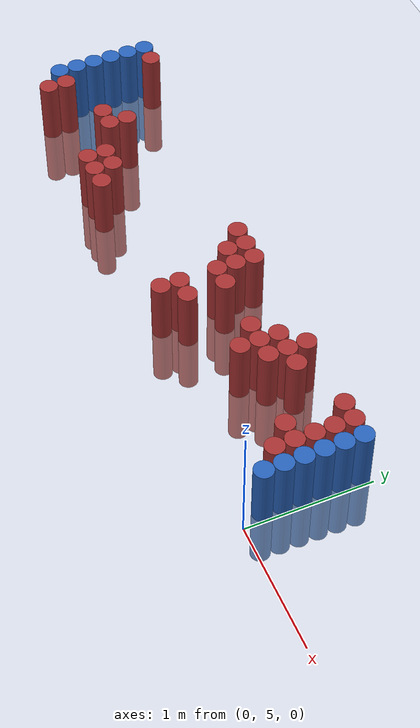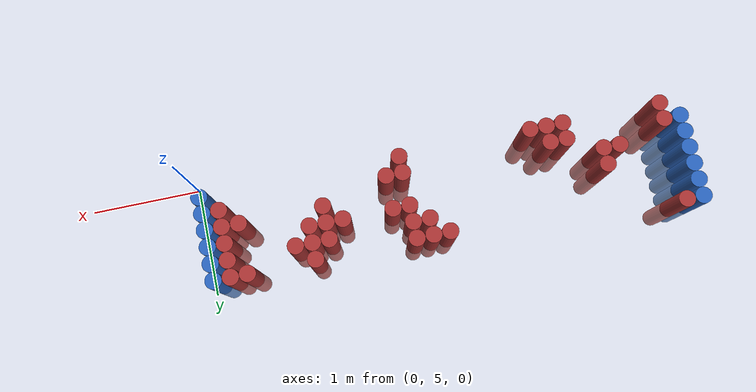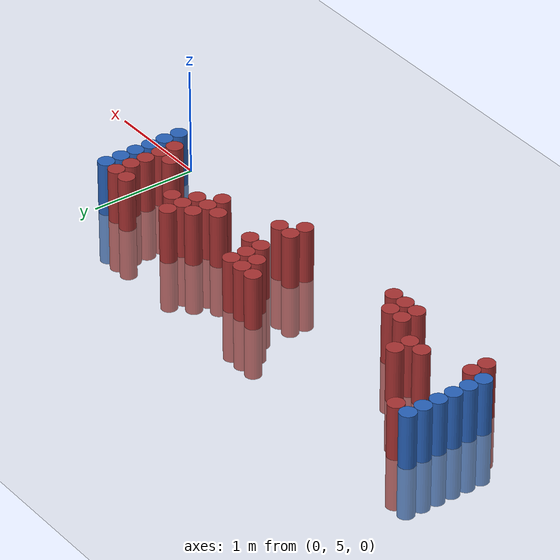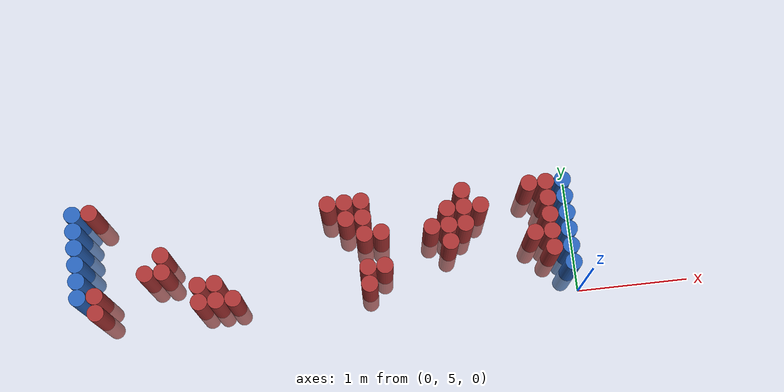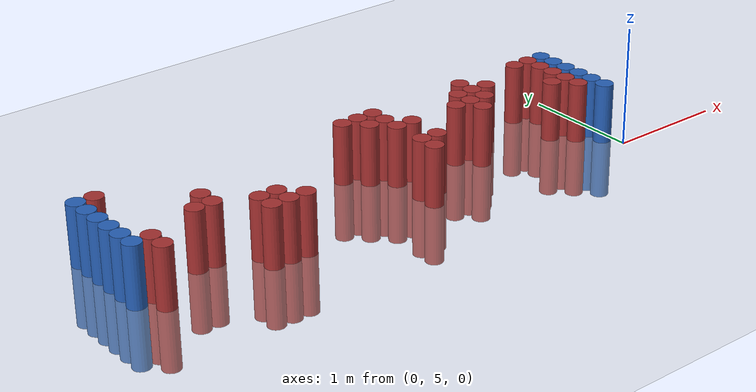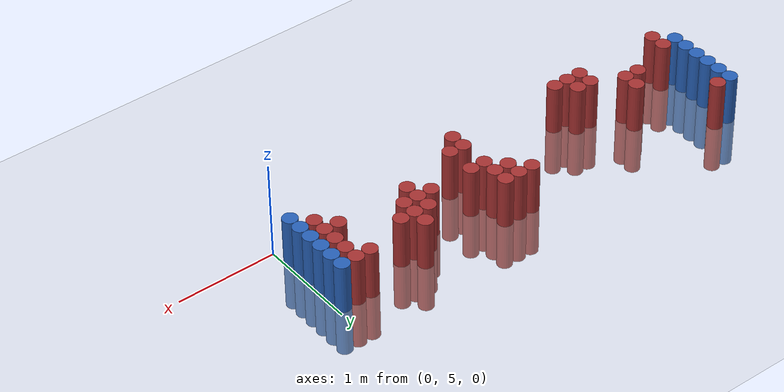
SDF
<sdf version="1.6">
 <world name="default">
  <model name="ground_plane">
   <static>1</static>
   <link name="link">
    <collision name="collision">
     <geometry><plane><normal>0 0 1</normal><size>100 100</size></plane></geometry>
     <surface><friction><ode><mu>100</mu><mu2>50</mu2></ode></friction></surface>
    </collision>
    <visual name="visual">
     <cast_shadows>0</cast_shadows>
     <geometry><plane><normal>0 0 1</normal><size>100 100</size></plane></geometry>
     <material>
      <script><uri>file://media/materials/scripts/gazebo.material</uri><name>Gazebo/Grey</name></script>
     </material>
    </visual>
   </link>
  </model>
  <model name="unit_cylinder_97">
   <static>1</static>
   <pose>-4.425000 5.325000 0.000000 0.000000 0.000000 0.000000</pose>
   <link name="link">
    <inertial>
     <mass>1</mass>
     <inertia><ixx>0.145833</ixx><ixy>0</ixy><ixz>0</ixz><iyy>0.145833</iyy><iyz>0</iyz><izz>0.125</izz></inertia>
    </inertial>
    <collision name="collision">
     <geometry><cylinder><radius>0.075000</radius><length>1</length></cylinder></geometry>
    </collision>
    <visual name="visual">
     <geometry><cylinder><radius>0.075000</radius><length>1</length></cylinder></geometry>
     <material>
      <ambient>0.152000 0.379000 0.720000 1</ambient>
      <diffuse>0.152000 0.379000 0.720000 1</diffuse>
     </material>
     <material>
      <script><name>Gazebo/Grey</name><uri>file://media/materials/scripts/gazebo.material</uri></script>
     </material>
    </visual>
   </link>
  </model>
  <model name="unit_cylinder_98">
   <static>1</static>
   <pose>-4.425000 5.475000 0.000000 0.000000 0.000000 0.000000</pose>
   <link name="link">
    <inertial>
     <mass>1</mass>
     <inertia><ixx>0.145833</ixx><ixy>0</ixy><ixz>0</ixz><iyy>0.145833</iyy><iyz>0</iyz><izz>0.125</izz></inertia>
    </inertial>
    <collision name="collision">
     <geometry><cylinder><radius>0.075000</radius><length>1</length></cylinder></geometry>
    </collision>
    <visual name="visual">
     <geometry><cylinder><radius>0.075000</radius><length>1</length></cylinder></geometry>
     <material>
      <ambient>0.152000 0.379000 0.720000 1</ambient>
      <diffuse>0.152000 0.379000 0.720000 1</diffuse>
     </material>
     <material>
      <script><name>Gazebo/Grey</name><uri>file://media/materials/scripts/gazebo.material</uri></script>
     </material>
    </visual>
   </link>
  </model>
  <model name="unit_cylinder_99">
   <static>1</static>
   <pose>-4.425000 5.625000 0.000000 0.000000 0.000000 0.000000</pose>
   <link name="link">
    <inertial>
     <mass>1</mass>
     <inertia><ixx>0.145833</ixx><ixy>0</ixy><ixz>0</ixz><iyy>0.145833</iyy><iyz>0</iyz><izz>0.125</izz></inertia>
    </inertial>
    <collision name="collision">
     <geometry><cylinder><radius>0.075000</radius><length>1</length></cylinder></geometry>
    </collision>
    <visual name="visual">
     <geometry><cylinder><radius>0.075000</radius><length>1</length></cylinder></geometry>
     <material>
      <ambient>0.152000 0.379000 0.720000 1</ambient>
      <diffuse>0.152000 0.379000 0.720000 1</diffuse>
     </material>
     <material>
      <script><name>Gazebo/Grey</name><uri>file://media/materials/scripts/gazebo.material</uri></script>
     </material>
    </visual>
   </link>
  </model>
  <model name="unit_cylinder_100">
   <static>1</static>
   <pose>-4.425000 5.775000 0.000000 0.000000 0.000000 0.000000</pose>
   <link name="link">
    <inertial>
     <mass>1</mass>
     <inertia><ixx>0.145833</ixx><ixy>0</ixy><ixz>0</ixz><iyy>0.145833</iyy><iyz>0</iyz><izz>0.125</izz></inertia>
    </inertial>
    <collision name="collision">
     <geometry><cylinder><radius>0.075000</radius><length>1</length></cylinder></geometry>
    </collision>
    <visual name="visual">
     <geometry><cylinder><radius>0.075000</radius><length>1</length></cylinder></geometry>
     <material>
      <ambient>0.152000 0.379000 0.720000 1</ambient>
      <diffuse>0.152000 0.379000 0.720000 1</diffuse>
     </material>
     <material>
      <script><name>Gazebo/Grey</name><uri>file://media/materials/scripts/gazebo.material</uri></script>
     </material>
    </visual>
   </link>
  </model>
  <model name="unit_cylinder_101">
   <static>1</static>
   <pose>-4.425000 5.925000 0.000000 0.000000 0.000000 0.000000</pose>
   <link name="link">
    <inertial>
     <mass>1</mass>
     <inertia><ixx>0.145833</ixx><ixy>0</ixy><ixz>0</ixz><iyy>0.145833</iyy><iyz>0</iyz><izz>0.125</izz></inertia>
    </inertial>
    <collision name="collision">
     <geometry><cylinder><radius>0.075000</radius><length>1</length></cylinder></geometry>
    </collision>
    <visual name="visual">
     <geometry><cylinder><radius>0.075000</radius><length>1</length></cylinder></geometry>
     <material>
      <ambient>0.152000 0.379000 0.720000 1</ambient>
      <diffuse>0.152000 0.379000 0.720000 1</diffuse>
     </material>
     <material>
      <script><name>Gazebo/Grey</name><uri>file://media/materials/scripts/gazebo.material</uri></script>
     </material>
    </visual>
   </link>
  </model>
  <model name="unit_cylinder_102">
   <static>1</static>
   <pose>-4.425000 6.075000 0.000000 0.000000 0.000000 0.000000</pose>
   <link name="link">
    <inertial>
     <mass>1</mass>
     <inertia><ixx>0.145833</ixx><ixy>0</ixy><ixz>0</ixz><iyy>0.145833</iyy><iyz>0</iyz><izz>0.125</izz></inertia>
    </inertial>
    <collision name="collision">
     <geometry><cylinder><radius>0.075000</radius><length>1</length></cylinder></geometry>
    </collision>
    <visual name="visual">
     <geometry><cylinder><radius>0.075000</radius><length>1</length></cylinder></geometry>
     <material>
      <ambient>0.152000 0.379000 0.720000 1</ambient>
      <diffuse>0.152000 0.379000 0.720000 1</diffuse>
     </material>
     <material>
      <script><name>Gazebo/Grey</name><uri>file://media/materials/scripts/gazebo.material</uri></script>
     </material>
    </visual>
   </link>
  </model>
  <model name="unit_cylinder_126">
   <static>1</static>
   <pose>-4.275000 5.175000 0.000000 0.000000 0.000000 0.000000</pose>
   <link name="link">
    <inertial>
     <mass>1</mass>
     <inertia><ixx>0.145833</ixx><ixy>0</ixy><ixz>0</ixz><iyy>0.145833</iyy><iyz>0</iyz><izz>0.125</izz></inertia>
    </inertial>
    <collision name="collision">
     <geometry><cylinder><radius>0.075000</radius><length>1</length></cylinder></geometry>
    </collision>
    <visual name="visual">
     <geometry><cylinder><radius>0.075000</radius><length>1</length></cylinder></geometry>
     <material>
      <ambient>0.648000 0.192000 0.192000 1</ambient>
      <diffuse>0.648000 0.192000 0.192000 1</diffuse>
     </material>
     <material>
      <script><name>Gazebo/Grey</name><uri>file://media/materials/scripts/gazebo.material</uri></script>
     </material>
    </visual>
   </link>
  </model>
  <model name="unit_cylinder_127">
   <static>1</static>
   <pose>-4.275000 5.325000 0.000000 0.000000 0.000000 0.000000</pose>
   <link name="link">
    <inertial>
     <mass>1</mass>
     <inertia><ixx>0.145833</ixx><ixy>0</ixy><ixz>0</ixz><iyy>0.145833</iyy><iyz>0</iyz><izz>0.125</izz></inertia>
    </inertial>
    <collision name="collision">
     <geometry><cylinder><radius>0.075000</radius><length>1</length></cylinder></geometry>
    </collision>
    <visual name="visual">
     <geometry><cylinder><radius>0.075000</radius><length>1</length></cylinder></geometry>
     <material>
      <ambient>0.648000 0.192000 0.192000 1</ambient>
      <diffuse>0.648000 0.192000 0.192000 1</diffuse>
     </material>
     <material>
      <script><name>Gazebo/Grey</name><uri>file://media/materials/scripts/gazebo.material</uri></script>
     </material>
    </visual>
   </link>
  </model>
  <model name="unit_cylinder_128">
   <static>1</static>
   <pose>-4.275000 6.075000 0.000000 0.000000 0.000000 0.000000</pose>
   <link name="link">
    <inertial>
     <mass>1</mass>
     <inertia><ixx>0.145833</ixx><ixy>0</ixy><ixz>0</ixz><iyy>0.145833</iyy><iyz>0</iyz><izz>0.125</izz></inertia>
    </inertial>
    <collision name="collision">
     <geometry><cylinder><radius>0.075000</radius><length>1</length></cylinder></geometry>
    </collision>
    <visual name="visual">
     <geometry><cylinder><radius>0.075000</radius><length>1</length></cylinder></geometry>
     <material>
      <ambient>0.648000 0.192000 0.192000 1</ambient>
      <diffuse>0.648000 0.192000 0.192000 1</diffuse>
     </material>
     <material>
      <script><name>Gazebo/Grey</name><uri>file://media/materials/scripts/gazebo.material</uri></script>
     </material>
    </visual>
   </link>
  </model>
  <model name="unit_cylinder_148">
   <static>1</static>
   <pose>-3.825000 5.475000 0.000000 0.000000 0.000000 0.000000</pose>
   <link name="link">
    <inertial>
     <mass>1</mass>
     <inertia><ixx>0.145833</ixx><ixy>0</ixy><ixz>0</ixz><iyy>0.145833</iyy><iyz>0</iyz><izz>0.125</izz></inertia>
    </inertial>
    <collision name="collision">
     <geometry><cylinder><radius>0.075000</radius><length>1</length></cylinder></geometry>
    </collision>
    <visual name="visual">
     <geometry><cylinder><radius>0.075000</radius><length>1</length></cylinder></geometry>
     <material>
      <ambient>0.648000 0.192000 0.192000 1</ambient>
      <diffuse>0.648000 0.192000 0.192000 1</diffuse>
     </material>
     <material>
      <script><name>Gazebo/Grey</name><uri>file://media/materials/scripts/gazebo.material</uri></script>
     </material>
    </visual>
   </link>
  </model>
  <model name="unit_cylinder_154">
   <static>1</static>
   <pose>-3.675000 5.475000 0.000000 0.000000 0.000000 0.000000</pose>
   <link name="link">
    <inertial>
     <mass>1</mass>
     <inertia><ixx>0.145833</ixx><ixy>0</ixy><ixz>0</ixz><iyy>0.145833</iyy><iyz>0</iyz><izz>0.125</izz></inertia>
    </inertial>
    <collision name="collision">
     <geometry><cylinder><radius>0.075000</radius><length>1</length></cylinder></geometry>
    </collision>
    <visual name="visual">
     <geometry><cylinder><radius>0.075000</radius><length>1</length></cylinder></geometry>
     <material>
      <ambient>0.648000 0.192000 0.192000 1</ambient>
      <diffuse>0.648000 0.192000 0.192000 1</diffuse>
     </material>
     <material>
      <script><name>Gazebo/Grey</name><uri>file://media/materials/scripts/gazebo.material</uri></script>
     </material>
    </visual>
   </link>
  </model>
  <model name="unit_cylinder_155">
   <static>1</static>
   <pose>-3.675000 5.625000 0.000000 0.000000 0.000000 0.000000</pose>
   <link name="link">
    <inertial>
     <mass>1</mass>
     <inertia><ixx>0.145833</ixx><ixy>0</ixy><ixz>0</ixz><iyy>0.145833</iyy><iyz>0</iyz><izz>0.125</izz></inertia>
    </inertial>
    <collision name="collision">
     <geometry><cylinder><radius>0.075000</radius><length>1</length></cylinder></geometry>
    </collision>
    <visual name="visual">
     <geometry><cylinder><radius>0.075000</radius><length>1</length></cylinder></geometry>
     <material>
      <ambient>0.648000 0.192000 0.192000 1</ambient>
      <diffuse>0.648000 0.192000 0.192000 1</diffuse>
     </material>
     <material>
      <script><name>Gazebo/Grey</name><uri>file://media/materials/scripts/gazebo.material</uri></script>
     </material>
    </visual>
   </link>
  </model>
  <model name="unit_cylinder_165">
   <static>1</static>
   <pose>-3.375000 5.175000 0.000000 0.000000 0.000000 0.000000</pose>
   <link name="link">
    <inertial>
     <mass>1</mass>
     <inertia><ixx>0.145833</ixx><ixy>0</ixy><ixz>0</ixz><iyy>0.145833</iyy><iyz>0</iyz><izz>0.125</izz></inertia>
    </inertial>
    <collision name="collision">
     <geometry><cylinder><radius>0.075000</radius><length>1</length></cylinder></geometry>
    </collision>
    <visual name="visual">
     <geometry><cylinder><radius>0.075000</radius><length>1</length></cylinder></geometry>
     <material>
      <ambient>0.648000 0.192000 0.192000 1</ambient>
      <diffuse>0.648000 0.192000 0.192000 1</diffuse>
     </material>
     <material>
      <script><name>Gazebo/Grey</name><uri>file://media/materials/scripts/gazebo.material</uri></script>
     </material>
    </visual>
   </link>
  </model>
  <model name="unit_cylinder_166">
   <static>1</static>
   <pose>-3.375000 5.325000 0.000000 0.000000 0.000000 0.000000</pose>
   <link name="link">
    <inertial>
     <mass>1</mass>
     <inertia><ixx>0.145833</ixx><ixy>0</ixy><ixz>0</ixz><iyy>0.145833</iyy><iyz>0</iyz><izz>0.125</izz></inertia>
    </inertial>
    <collision name="collision">
     <geometry><cylinder><radius>0.075000</radius><length>1</length></cylinder></geometry>
    </collision>
    <visual name="visual">
     <geometry><cylinder><radius>0.075000</radius><length>1</length></cylinder></geometry>
     <material>
      <ambient>0.648000 0.192000 0.192000 1</ambient>
      <diffuse>0.648000 0.192000 0.192000 1</diffuse>
     </material>
     <material>
      <script><name>Gazebo/Grey</name><uri>file://media/materials/scripts/gazebo.material</uri></script>
     </material>
    </visual>
   </link>
  </model>
  <model name="unit_cylinder_172">
   <static>1</static>
   <pose>-3.225000 5.175000 0.000000 0.000000 0.000000 0.000000</pose>
   <link name="link">
    <inertial>
     <mass>1</mass>
     <inertia><ixx>0.145833</ixx><ixy>0</ixy><ixz>0</ixz><iyy>0.145833</iyy><iyz>0</iyz><izz>0.125</izz></inertia>
    </inertial>
    <collision name="collision">
     <geometry><cylinder><radius>0.075000</radius><length>1</length></cylinder></geometry>
    </collision>
    <visual name="visual">
     <geometry><cylinder><radius>0.075000</radius><length>1</length></cylinder></geometry>
     <material>
      <ambient>0.648000 0.192000 0.192000 1</ambient>
      <diffuse>0.648000 0.192000 0.192000 1</diffuse>
     </material>
     <material>
      <script><name>Gazebo/Grey</name><uri>file://media/materials/scripts/gazebo.material</uri></script>
     </material>
    </visual>
   </link>
  </model>
  <model name="unit_cylinder_173">
   <static>1</static>
   <pose>-3.225000 5.325000 0.000000 0.000000 0.000000 0.000000</pose>
   <link name="link">
    <inertial>
     <mass>1</mass>
     <inertia><ixx>0.145833</ixx><ixy>0</ixy><ixz>0</ixz><iyy>0.145833</iyy><iyz>0</iyz><izz>0.125</izz></inertia>
    </inertial>
    <collision name="collision">
     <geometry><cylinder><radius>0.075000</radius><length>1</length></cylinder></geometry>
    </collision>
    <visual name="visual">
     <geometry><cylinder><radius>0.075000</radius><length>1</length></cylinder></geometry>
     <material>
      <ambient>0.648000 0.192000 0.192000 1</ambient>
      <diffuse>0.648000 0.192000 0.192000 1</diffuse>
     </material>
     <material>
      <script><name>Gazebo/Grey</name><uri>file://media/materials/scripts/gazebo.material</uri></script>
     </material>
    </visual>
   </link>
  </model>
  <model name="unit_cylinder_183">
   <static>1</static>
   <pose>-3.075000 5.175000 0.000000 0.000000 0.000000 0.000000</pose>
   <link name="link">
    <inertial>
     <mass>1</mass>
     <inertia><ixx>0.145833</ixx><ixy>0</ixy><ixz>0</ixz><iyy>0.145833</iyy><iyz>0</iyz><izz>0.125</izz></inertia>
    </inertial>
    <collision name="collision">
     <geometry><cylinder><radius>0.075000</radius><length>1</length></cylinder></geometry>
    </collision>
    <visual name="visual">
     <geometry><cylinder><radius>0.075000</radius><length>1</length></cylinder></geometry>
     <material>
      <ambient>0.648000 0.192000 0.192000 1</ambient>
      <diffuse>0.648000 0.192000 0.192000 1</diffuse>
     </material>
     <material>
      <script><name>Gazebo/Grey</name><uri>file://media/materials/scripts/gazebo.material</uri></script>
     </material>
    </visual>
   </link>
  </model>
  <model name="unit_cylinder_207">
   <static>1</static>
   <pose>-2.175000 5.925000 0.000000 0.000000 0.000000 0.000000</pose>
   <link name="link">
    <inertial>
     <mass>1</mass>
     <inertia><ixx>0.145833</ixx><ixy>0</ixy><ixz>0</ixz><iyy>0.145833</iyy><iyz>0</iyz><izz>0.125</izz></inertia>
    </inertial>
    <collision name="collision">
     <geometry><cylinder><radius>0.075000</radius><length>1</length></cylinder></geometry>
    </collision>
    <visual name="visual">
     <geometry><cylinder><radius>0.075000</radius><length>1</length></cylinder></geometry>
     <material>
      <ambient>0.648000 0.192000 0.192000 1</ambient>
      <diffuse>0.648000 0.192000 0.192000 1</diffuse>
     </material>
     <material>
      <script><name>Gazebo/Grey</name><uri>file://media/materials/scripts/gazebo.material</uri></script>
     </material>
    </visual>
   </link>
  </model>
  <model name="unit_cylinder_209">
   <static>1</static>
   <pose>-2.025000 5.775000 0.000000 0.000000 0.000000 0.000000</pose>
   <link name="link">
    <inertial>
     <mass>1</mass>
     <inertia><ixx>0.145833</ixx><ixy>0</ixy><ixz>0</ixz><iyy>0.145833</iyy><iyz>0</iyz><izz>0.125</izz></inertia>
    </inertial>
    <collision name="collision">
     <geometry><cylinder><radius>0.075000</radius><length>1</length></cylinder></geometry>
    </collision>
    <visual name="visual">
     <geometry><cylinder><radius>0.075000</radius><length>1</length></cylinder></geometry>
     <material>
      <ambient>0.648000 0.192000 0.192000 1</ambient>
      <diffuse>0.648000 0.192000 0.192000 1</diffuse>
     </material>
     <material>
      <script><name>Gazebo/Grey</name><uri>file://media/materials/scripts/gazebo.material</uri></script>
     </material>
    </visual>
   </link>
  </model>
  <model name="unit_cylinder_210">
   <static>1</static>
   <pose>-2.025000 5.925000 0.000000 0.000000 0.000000 0.000000</pose>
   <link name="link">
    <inertial>
     <mass>1</mass>
     <inertia><ixx>0.145833</ixx><ixy>0</ixy><ixz>0</ixz><iyy>0.145833</iyy><iyz>0</iyz><izz>0.125</izz></inertia>
    </inertial>
    <collision name="collision">
     <geometry><cylinder><radius>0.075000</radius><length>1</length></cylinder></geometry>
    </collision>
    <visual name="visual">
     <geometry><cylinder><radius>0.075000</radius><length>1</length></cylinder></geometry>
     <material>
      <ambient>0.648000 0.192000 0.192000 1</ambient>
      <diffuse>0.648000 0.192000 0.192000 1</diffuse>
     </material>
     <material>
      <script><name>Gazebo/Grey</name><uri>file://media/materials/scripts/gazebo.material</uri></script>
     </material>
    </visual>
   </link>
  </model>
  <model name="unit_cylinder_213">
   <static>1</static>
   <pose>-1.875000 5.175000 0.000000 0.000000 0.000000 0.000000</pose>
   <link name="link">
    <inertial>
     <mass>1</mass>
     <inertia><ixx>0.145833</ixx><ixy>0</ixy><ixz>0</ixz><iyy>0.145833</iyy><iyz>0</iyz><izz>0.125</izz></inertia>
    </inertial>
    <collision name="collision">
     <geometry><cylinder><radius>0.075000</radius><length>1</length></cylinder></geometry>
    </collision>
    <visual name="visual">
     <geometry><cylinder><radius>0.075000</radius><length>1</length></cylinder></geometry>
     <material>
      <ambient>0.648000 0.192000 0.192000 1</ambient>
      <diffuse>0.648000 0.192000 0.192000 1</diffuse>
     </material>
     <material>
      <script><name>Gazebo/Grey</name><uri>file://media/materials/scripts/gazebo.material</uri></script>
     </material>
    </visual>
   </link>
  </model>
  <model name="unit_cylinder_214">
   <static>1</static>
   <pose>-1.875000 5.325000 0.000000 0.000000 0.000000 0.000000</pose>
   <link name="link">
    <inertial>
     <mass>1</mass>
     <inertia><ixx>0.145833</ixx><ixy>0</ixy><ixz>0</ixz><iyy>0.145833</iyy><iyz>0</iyz><izz>0.125</izz></inertia>
    </inertial>
    <collision name="collision">
     <geometry><cylinder><radius>0.075000</radius><length>1</length></cylinder></geometry>
    </collision>
    <visual name="visual">
     <geometry><cylinder><radius>0.075000</radius><length>1</length></cylinder></geometry>
     <material>
      <ambient>0.648000 0.192000 0.192000 1</ambient>
      <diffuse>0.648000 0.192000 0.192000 1</diffuse>
     </material>
     <material>
      <script><name>Gazebo/Grey</name><uri>file://media/materials/scripts/gazebo.material</uri></script>
     </material>
    </visual>
   </link>
  </model>
  <model name="unit_cylinder_215">
   <static>1</static>
   <pose>-1.875000 5.625000 0.000000 0.000000 0.000000 0.000000</pose>
   <link name="link">
    <inertial>
     <mass>1</mass>
     <inertia><ixx>0.145833</ixx><ixy>0</ixy><ixz>0</ixz><iyy>0.145833</iyy><iyz>0</iyz><izz>0.125</izz></inertia>
    </inertial>
    <collision name="collision">
     <geometry><cylinder><radius>0.075000</radius><length>1</length></cylinder></geometry>
    </collision>
    <visual name="visual">
     <geometry><cylinder><radius>0.075000</radius><length>1</length></cylinder></geometry>
     <material>
      <ambient>0.648000 0.192000 0.192000 1</ambient>
      <diffuse>0.648000 0.192000 0.192000 1</diffuse>
     </material>
     <material>
      <script><name>Gazebo/Grey</name><uri>file://media/materials/scripts/gazebo.material</uri></script>
     </material>
    </visual>
   </link>
  </model>
  <model name="unit_cylinder_216">
   <static>1</static>
   <pose>-1.875000 5.775000 0.000000 0.000000 0.000000 0.000000</pose>
   <link name="link">
    <inertial>
     <mass>1</mass>
     <inertia><ixx>0.145833</ixx><ixy>0</ixy><ixz>0</ixz><iyy>0.145833</iyy><iyz>0</iyz><izz>0.125</izz></inertia>
    </inertial>
    <collision name="collision">
     <geometry><cylinder><radius>0.075000</radius><length>1</length></cylinder></geometry>
    </collision>
    <visual name="visual">
     <geometry><cylinder><radius>0.075000</radius><length>1</length></cylinder></geometry>
     <material>
      <ambient>0.648000 0.192000 0.192000 1</ambient>
      <diffuse>0.648000 0.192000 0.192000 1</diffuse>
     </material>
     <material>
      <script><name>Gazebo/Grey</name><uri>file://media/materials/scripts/gazebo.material</uri></script>
     </material>
    </visual>
   </link>
  </model>
  <model name="unit_cylinder_217">
   <static>1</static>
   <pose>-1.875000 5.925000 0.000000 0.000000 0.000000 0.000000</pose>
   <link name="link">
    <inertial>
     <mass>1</mass>
     <inertia><ixx>0.145833</ixx><ixy>0</ixy><ixz>0</ixz><iyy>0.145833</iyy><iyz>0</iyz><izz>0.125</izz></inertia>
    </inertial>
    <collision name="collision">
     <geometry><cylinder><radius>0.075000</radius><length>1</length></cylinder></geometry>
    </collision>
    <visual name="visual">
     <geometry><cylinder><radius>0.075000</radius><length>1</length></cylinder></geometry>
     <material>
      <ambient>0.648000 0.192000 0.192000 1</ambient>
      <diffuse>0.648000 0.192000 0.192000 1</diffuse>
     </material>
     <material>
      <script><name>Gazebo/Grey</name><uri>file://media/materials/scripts/gazebo.material</uri></script>
     </material>
    </visual>
   </link>
  </model>
  <model name="unit_cylinder_222">
   <static>1</static>
   <pose>-1.725000 5.325000 0.000000 0.000000 0.000000 0.000000</pose>
   <link name="link">
    <inertial>
     <mass>1</mass>
     <inertia><ixx>0.145833</ixx><ixy>0</ixy><ixz>0</ixz><iyy>0.145833</iyy><iyz>0</iyz><izz>0.125</izz></inertia>
    </inertial>
    <collision name="collision">
     <geometry><cylinder><radius>0.075000</radius><length>1</length></cylinder></geometry>
    </collision>
    <visual name="visual">
     <geometry><cylinder><radius>0.075000</radius><length>1</length></cylinder></geometry>
     <material>
      <ambient>0.648000 0.192000 0.192000 1</ambient>
      <diffuse>0.648000 0.192000 0.192000 1</diffuse>
     </material>
     <material>
      <script><name>Gazebo/Grey</name><uri>file://media/materials/scripts/gazebo.material</uri></script>
     </material>
    </visual>
   </link>
  </model>
  <model name="unit_cylinder_223">
   <static>1</static>
   <pose>-1.725000 5.625000 0.000000 0.000000 0.000000 0.000000</pose>
   <link name="link">
    <inertial>
     <mass>1</mass>
     <inertia><ixx>0.145833</ixx><ixy>0</ixy><ixz>0</ixz><iyy>0.145833</iyy><iyz>0</iyz><izz>0.125</izz></inertia>
    </inertial>
    <collision name="collision">
     <geometry><cylinder><radius>0.075000</radius><length>1</length></cylinder></geometry>
    </collision>
    <visual name="visual">
     <geometry><cylinder><radius>0.075000</radius><length>1</length></cylinder></geometry>
     <material>
      <ambient>0.648000 0.192000 0.192000 1</ambient>
      <diffuse>0.648000 0.192000 0.192000 1</diffuse>
     </material>
     <material>
      <script><name>Gazebo/Grey</name><uri>file://media/materials/scripts/gazebo.material</uri></script>
     </material>
    </visual>
   </link>
  </model>
  <model name="unit_cylinder_238">
   <static>1</static>
   <pose>-1.275000 5.625000 0.000000 0.000000 0.000000 0.000000</pose>
   <link name="link">
    <inertial>
     <mass>1</mass>
     <inertia><ixx>0.145833</ixx><ixy>0</ixy><ixz>0</ixz><iyy>0.145833</iyy><iyz>0</iyz><izz>0.125</izz></inertia>
    </inertial>
    <collision name="collision">
     <geometry><cylinder><radius>0.075000</radius><length>1</length></cylinder></geometry>
    </collision>
    <visual name="visual">
     <geometry><cylinder><radius>0.075000</radius><length>1</length></cylinder></geometry>
     <material>
      <ambient>0.648000 0.192000 0.192000 1</ambient>
      <diffuse>0.648000 0.192000 0.192000 1</diffuse>
     </material>
     <material>
      <script><name>Gazebo/Grey</name><uri>file://media/materials/scripts/gazebo.material</uri></script>
     </material>
    </visual>
   </link>
  </model>
  <model name="unit_cylinder_243">
   <static>1</static>
   <pose>-1.125000 5.475000 0.000000 0.000000 0.000000 0.000000</pose>
   <link name="link">
    <inertial>
     <mass>1</mass>
     <inertia><ixx>0.145833</ixx><ixy>0</ixy><ixz>0</ixz><iyy>0.145833</iyy><iyz>0</iyz><izz>0.125</izz></inertia>
    </inertial>
    <collision name="collision">
     <geometry><cylinder><radius>0.075000</radius><length>1</length></cylinder></geometry>
    </collision>
    <visual name="visual">
     <geometry><cylinder><radius>0.075000</radius><length>1</length></cylinder></geometry>
     <material>
      <ambient>0.648000 0.192000 0.192000 1</ambient>
      <diffuse>0.648000 0.192000 0.192000 1</diffuse>
     </material>
     <material>
      <script><name>Gazebo/Grey</name><uri>file://media/materials/scripts/gazebo.material</uri></script>
     </material>
    </visual>
   </link>
  </model>
  <model name="unit_cylinder_244">
   <static>1</static>
   <pose>-1.125000 5.625000 0.000000 0.000000 0.000000 0.000000</pose>
   <link name="link">
    <inertial>
     <mass>1</mass>
     <inertia><ixx>0.145833</ixx><ixy>0</ixy><ixz>0</ixz><iyy>0.145833</iyy><iyz>0</iyz><izz>0.125</izz></inertia>
    </inertial>
    <collision name="collision">
     <geometry><cylinder><radius>0.075000</radius><length>1</length></cylinder></geometry>
    </collision>
    <visual name="visual">
     <geometry><cylinder><radius>0.075000</radius><length>1</length></cylinder></geometry>
     <material>
      <ambient>0.648000 0.192000 0.192000 1</ambient>
      <diffuse>0.648000 0.192000 0.192000 1</diffuse>
     </material>
     <material>
      <script><name>Gazebo/Grey</name><uri>file://media/materials/scripts/gazebo.material</uri></script>
     </material>
    </visual>
   </link>
  </model>
  <model name="unit_cylinder_245">
   <static>1</static>
   <pose>-1.125000 5.775000 0.000000 0.000000 0.000000 0.000000</pose>
   <link name="link">
    <inertial>
     <mass>1</mass>
     <inertia><ixx>0.145833</ixx><ixy>0</ixy><ixz>0</ixz><iyy>0.145833</iyy><iyz>0</iyz><izz>0.125</izz></inertia>
    </inertial>
    <collision name="collision">
     <geometry><cylinder><radius>0.075000</radius><length>1</length></cylinder></geometry>
    </collision>
    <visual name="visual">
     <geometry><cylinder><radius>0.075000</radius><length>1</length></cylinder></geometry>
     <material>
      <ambient>0.648000 0.192000 0.192000 1</ambient>
      <diffuse>0.648000 0.192000 0.192000 1</diffuse>
     </material>
     <material>
      <script><name>Gazebo/Grey</name><uri>file://media/materials/scripts/gazebo.material</uri></script>
     </material>
    </visual>
   </link>
  </model>
  <model name="unit_cylinder_257">
   <static>1</static>
   <pose>-0.975000 5.625000 0.000000 0.000000 0.000000 0.000000</pose>
   <link name="link">
    <inertial>
     <mass>1</mass>
     <inertia><ixx>0.145833</ixx><ixy>0</ixy><ixz>0</ixz><iyy>0.145833</iyy><iyz>0</iyz><izz>0.125</izz></inertia>
    </inertial>
    <collision name="collision">
     <geometry><cylinder><radius>0.075000</radius><length>1</length></cylinder></geometry>
    </collision>
    <visual name="visual">
     <geometry><cylinder><radius>0.075000</radius><length>1</length></cylinder></geometry>
     <material>
      <ambient>0.648000 0.192000 0.192000 1</ambient>
      <diffuse>0.648000 0.192000 0.192000 1</diffuse>
     </material>
     <material>
      <script><name>Gazebo/Grey</name><uri>file://media/materials/scripts/gazebo.material</uri></script>
     </material>
    </visual>
   </link>
  </model>
  <model name="unit_cylinder_258">
   <static>1</static>
   <pose>-0.975000 5.775000 0.000000 0.000000 0.000000 0.000000</pose>
   <link name="link">
    <inertial>
     <mass>1</mass>
     <inertia><ixx>0.145833</ixx><ixy>0</ixy><ixz>0</ixz><iyy>0.145833</iyy><iyz>0</iyz><izz>0.125</izz></inertia>
    </inertial>
    <collision name="collision">
     <geometry><cylinder><radius>0.075000</radius><length>1</length></cylinder></geometry>
    </collision>
    <visual name="visual">
     <geometry><cylinder><radius>0.075000</radius><length>1</length></cylinder></geometry>
     <material>
      <ambient>0.648000 0.192000 0.192000 1</ambient>
      <diffuse>0.648000 0.192000 0.192000 1</diffuse>
     </material>
     <material>
      <script><name>Gazebo/Grey</name><uri>file://media/materials/scripts/gazebo.material</uri></script>
     </material>
    </visual>
   </link>
  </model>
  <model name="unit_cylinder_259">
   <static>1</static>
   <pose>-0.975000 5.925000 0.000000 0.000000 0.000000 0.000000</pose>
   <link name="link">
    <inertial>
     <mass>1</mass>
     <inertia><ixx>0.145833</ixx><ixy>0</ixy><ixz>0</ixz><iyy>0.145833</iyy><iyz>0</iyz><izz>0.125</izz></inertia>
    </inertial>
    <collision name="collision">
     <geometry><cylinder><radius>0.075000</radius><length>1</length></cylinder></geometry>
    </collision>
    <visual name="visual">
     <geometry><cylinder><radius>0.075000</radius><length>1</length></cylinder></geometry>
     <material>
      <ambient>0.648000 0.192000 0.192000 1</ambient>
      <diffuse>0.648000 0.192000 0.192000 1</diffuse>
     </material>
     <material>
      <script><name>Gazebo/Grey</name><uri>file://media/materials/scripts/gazebo.material</uri></script>
     </material>
    </visual>
   </link>
  </model>
  <model name="unit_cylinder_269">
   <static>1</static>
   <pose>-0.825000 5.775000 0.000000 0.000000 0.000000 0.000000</pose>
   <link name="link">
    <inertial>
     <mass>1</mass>
     <inertia><ixx>0.145833</ixx><ixy>0</ixy><ixz>0</ixz><iyy>0.145833</iyy><iyz>0</iyz><izz>0.125</izz></inertia>
    </inertial>
    <collision name="collision">
     <geometry><cylinder><radius>0.075000</radius><length>1</length></cylinder></geometry>
    </collision>
    <visual name="visual">
     <geometry><cylinder><radius>0.075000</radius><length>1</length></cylinder></geometry>
     <material>
      <ambient>0.648000 0.192000 0.192000 1</ambient>
      <diffuse>0.648000 0.192000 0.192000 1</diffuse>
     </material>
     <material>
      <script><name>Gazebo/Grey</name><uri>file://media/materials/scripts/gazebo.material</uri></script>
     </material>
    </visual>
   </link>
  </model>
  <model name="unit_cylinder_286">
   <static>1</static>
   <pose>-0.375000 5.475000 0.000000 0.000000 0.000000 0.000000</pose>
   <link name="link">
    <inertial>
     <mass>1</mass>
     <inertia><ixx>0.145833</ixx><ixy>0</ixy><ixz>0</ixz><iyy>0.145833</iyy><iyz>0</iyz><izz>0.125</izz></inertia>
    </inertial>
    <collision name="collision">
     <geometry><cylinder><radius>0.075000</radius><length>1</length></cylinder></geometry>
    </collision>
    <visual name="visual">
     <geometry><cylinder><radius>0.075000</radius><length>1</length></cylinder></geometry>
     <material>
      <ambient>0.648000 0.192000 0.192000 1</ambient>
      <diffuse>0.648000 0.192000 0.192000 1</diffuse>
     </material>
     <material>
      <script><name>Gazebo/Grey</name><uri>file://media/materials/scripts/gazebo.material</uri></script>
     </material>
    </visual>
   </link>
  </model>
  <model name="unit_cylinder_287">
   <static>1</static>
   <pose>-0.375000 5.925000 0.000000 0.000000 0.000000 0.000000</pose>
   <link name="link">
    <inertial>
     <mass>1</mass>
     <inertia><ixx>0.145833</ixx><ixy>0</ixy><ixz>0</ixz><iyy>0.145833</iyy><iyz>0</iyz><izz>0.125</izz></inertia>
    </inertial>
    <collision name="collision">
     <geometry><cylinder><radius>0.075000</radius><length>1</length></cylinder></geometry>
    </collision>
    <visual name="visual">
     <geometry><cylinder><radius>0.075000</radius><length>1</length></cylinder></geometry>
     <material>
      <ambient>0.648000 0.192000 0.192000 1</ambient>
      <diffuse>0.648000 0.192000 0.192000 1</diffuse>
     </material>
     <material>
      <script><name>Gazebo/Grey</name><uri>file://media/materials/scripts/gazebo.material</uri></script>
     </material>
    </visual>
   </link>
  </model>
  <model name="unit_cylinder_293">
   <static>1</static>
   <pose>-0.225000 5.325000 0.000000 0.000000 0.000000 0.000000</pose>
   <link name="link">
    <inertial>
     <mass>1</mass>
     <inertia><ixx>0.145833</ixx><ixy>0</ixy><ixz>0</ixz><iyy>0.145833</iyy><iyz>0</iyz><izz>0.125</izz></inertia>
    </inertial>
    <collision name="collision">
     <geometry><cylinder><radius>0.075000</radius><length>1</length></cylinder></geometry>
    </collision>
    <visual name="visual">
     <geometry><cylinder><radius>0.075000</radius><length>1</length></cylinder></geometry>
     <material>
      <ambient>0.648000 0.192000 0.192000 1</ambient>
      <diffuse>0.648000 0.192000 0.192000 1</diffuse>
     </material>
     <material>
      <script><name>Gazebo/Grey</name><uri>file://media/materials/scripts/gazebo.material</uri></script>
     </material>
    </visual>
   </link>
  </model>
  <model name="unit_cylinder_294">
   <static>1</static>
   <pose>-0.225000 5.475000 0.000000 0.000000 0.000000 0.000000</pose>
   <link name="link">
    <inertial>
     <mass>1</mass>
     <inertia><ixx>0.145833</ixx><ixy>0</ixy><ixz>0</ixz><iyy>0.145833</iyy><iyz>0</iyz><izz>0.125</izz></inertia>
    </inertial>
    <collision name="collision">
     <geometry><cylinder><radius>0.075000</radius><length>1</length></cylinder></geometry>
    </collision>
    <visual name="visual">
     <geometry><cylinder><radius>0.075000</radius><length>1</length></cylinder></geometry>
     <material>
      <ambient>0.648000 0.192000 0.192000 1</ambient>
      <diffuse>0.648000 0.192000 0.192000 1</diffuse>
     </material>
     <material>
      <script><name>Gazebo/Grey</name><uri>file://media/materials/scripts/gazebo.material</uri></script>
     </material>
    </visual>
   </link>
  </model>
  <model name="unit_cylinder_295">
   <static>1</static>
   <pose>-0.225000 5.625000 0.000000 0.000000 0.000000 0.000000</pose>
   <link name="link">
    <inertial>
     <mass>1</mass>
     <inertia><ixx>0.145833</ixx><ixy>0</ixy><ixz>0</ixz><iyy>0.145833</iyy><iyz>0</iyz><izz>0.125</izz></inertia>
    </inertial>
    <collision name="collision">
     <geometry><cylinder><radius>0.075000</radius><length>1</length></cylinder></geometry>
    </collision>
    <visual name="visual">
     <geometry><cylinder><radius>0.075000</radius><length>1</length></cylinder></geometry>
     <material>
      <ambient>0.648000 0.192000 0.192000 1</ambient>
      <diffuse>0.648000 0.192000 0.192000 1</diffuse>
     </material>
     <material>
      <script><name>Gazebo/Grey</name><uri>file://media/materials/scripts/gazebo.material</uri></script>
     </material>
    </visual>
   </link>
  </model>
  <model name="unit_cylinder_296">
   <static>1</static>
   <pose>-0.225000 5.775000 0.000000 0.000000 0.000000 0.000000</pose>
   <link name="link">
    <inertial>
     <mass>1</mass>
     <inertia><ixx>0.145833</ixx><ixy>0</ixy><ixz>0</ixz><iyy>0.145833</iyy><iyz>0</iyz><izz>0.125</izz></inertia>
    </inertial>
    <collision name="collision">
     <geometry><cylinder><radius>0.075000</radius><length>1</length></cylinder></geometry>
    </collision>
    <visual name="visual">
     <geometry><cylinder><radius>0.075000</radius><length>1</length></cylinder></geometry>
     <material>
      <ambient>0.648000 0.192000 0.192000 1</ambient>
      <diffuse>0.648000 0.192000 0.192000 1</diffuse>
     </material>
     <material>
      <script><name>Gazebo/Grey</name><uri>file://media/materials/scripts/gazebo.material</uri></script>
     </material>
    </visual>
   </link>
  </model>
  <model name="unit_cylinder_297">
   <static>1</static>
   <pose>-0.225000 5.925000 0.000000 0.000000 0.000000 0.000000</pose>
   <link name="link">
    <inertial>
     <mass>1</mass>
     <inertia><ixx>0.145833</ixx><ixy>0</ixy><ixz>0</ixz><iyy>0.145833</iyy><iyz>0</iyz><izz>0.125</izz></inertia>
    </inertial>
    <collision name="collision">
     <geometry><cylinder><radius>0.075000</radius><length>1</length></cylinder></geometry>
    </collision>
    <visual name="visual">
     <geometry><cylinder><radius>0.075000</radius><length>1</length></cylinder></geometry>
     <material>
      <ambient>0.648000 0.192000 0.192000 1</ambient>
      <diffuse>0.648000 0.192000 0.192000 1</diffuse>
     </material>
     <material>
      <script><name>Gazebo/Grey</name><uri>file://media/materials/scripts/gazebo.material</uri></script>
     </material>
    </visual>
   </link>
  </model>
  <model name="unit_cylinder_308">
   <static>1</static>
   <pose>-0.075000 5.175000 0.000000 0.000000 0.000000 0.000000</pose>
   <link name="link">
    <inertial>
     <mass>1</mass>
     <inertia><ixx>0.145833</ixx><ixy>0</ixy><ixz>0</ixz><iyy>0.145833</iyy><iyz>0</iyz><izz>0.125</izz></inertia>
    </inertial>
    <collision name="collision">
     <geometry><cylinder><radius>0.075000</radius><length>1</length></cylinder></geometry>
    </collision>
    <visual name="visual">
     <geometry><cylinder><radius>0.075000</radius><length>1</length></cylinder></geometry>
     <material>
      <ambient>0.152000 0.379000 0.720000 1</ambient>
      <diffuse>0.152000 0.379000 0.720000 1</diffuse>
     </material>
     <material>
      <script><name>Gazebo/Grey</name><uri>file://media/materials/scripts/gazebo.material</uri></script>
     </material>
    </visual>
   </link>
  </model>
  <model name="unit_cylinder_309">
   <static>1</static>
   <pose>-0.075000 5.325000 0.000000 0.000000 0.000000 0.000000</pose>
   <link name="link">
    <inertial>
     <mass>1</mass>
     <inertia><ixx>0.145833</ixx><ixy>0</ixy><ixz>0</ixz><iyy>0.145833</iyy><iyz>0</iyz><izz>0.125</izz></inertia>
    </inertial>
    <collision name="collision">
     <geometry><cylinder><radius>0.075000</radius><length>1</length></cylinder></geometry>
    </collision>
    <visual name="visual">
     <geometry><cylinder><radius>0.075000</radius><length>1</length></cylinder></geometry>
     <material>
      <ambient>0.152000 0.379000 0.720000 1</ambient>
      <diffuse>0.152000 0.379000 0.720000 1</diffuse>
     </material>
     <material>
      <script><name>Gazebo/Grey</name><uri>file://media/materials/scripts/gazebo.material</uri></script>
     </material>
    </visual>
   </link>
  </model>
  <model name="unit_cylinder_310">
   <static>1</static>
   <pose>-0.075000 5.475000 0.000000 0.000000 0.000000 0.000000</pose>
   <link name="link">
    <inertial>
     <mass>1</mass>
     <inertia><ixx>0.145833</ixx><ixy>0</ixy><ixz>0</ixz><iyy>0.145833</iyy><iyz>0</iyz><izz>0.125</izz></inertia>
    </inertial>
    <collision name="collision">
     <geometry><cylinder><radius>0.075000</radius><length>1</length></cylinder></geometry>
    </collision>
    <visual name="visual">
     <geometry><cylinder><radius>0.075000</radius><length>1</length></cylinder></geometry>
     <material>
      <ambient>0.152000 0.379000 0.720000 1</ambient>
      <diffuse>0.152000 0.379000 0.720000 1</diffuse>
     </material>
     <material>
      <script><name>Gazebo/Grey</name><uri>file://media/materials/scripts/gazebo.material</uri></script>
     </material>
    </visual>
   </link>
  </model>
  <model name="unit_cylinder_311">
   <static>1</static>
   <pose>-0.075000 5.625000 0.000000 0.000000 0.000000 0.000000</pose>
   <link name="link">
    <inertial>
     <mass>1</mass>
     <inertia><ixx>0.145833</ixx><ixy>0</ixy><ixz>0</ixz><iyy>0.145833</iyy><iyz>0</iyz><izz>0.125</izz></inertia>
    </inertial>
    <collision name="collision">
     <geometry><cylinder><radius>0.075000</radius><length>1</length></cylinder></geometry>
    </collision>
    <visual name="visual">
     <geometry><cylinder><radius>0.075000</radius><length>1</length></cylinder></geometry>
     <material>
      <ambient>0.152000 0.379000 0.720000 1</ambient>
      <diffuse>0.152000 0.379000 0.720000 1</diffuse>
     </material>
     <material>
      <script><name>Gazebo/Grey</name><uri>file://media/materials/scripts/gazebo.material</uri></script>
     </material>
    </visual>
   </link>
  </model>
  <model name="unit_cylinder_312">
   <static>1</static>
   <pose>-0.075000 5.775000 0.000000 0.000000 0.000000 0.000000</pose>
   <link name="link">
    <inertial>
     <mass>1</mass>
     <inertia><ixx>0.145833</ixx><ixy>0</ixy><ixz>0</ixz><iyy>0.145833</iyy><iyz>0</iyz><izz>0.125</izz></inertia>
    </inertial>
    <collision name="collision">
     <geometry><cylinder><radius>0.075000</radius><length>1</length></cylinder></geometry>
    </collision>
    <visual name="visual">
     <geometry><cylinder><radius>0.075000</radius><length>1</length></cylinder></geometry>
     <material>
      <ambient>0.152000 0.379000 0.720000 1</ambient>
      <diffuse>0.152000 0.379000 0.720000 1</diffuse>
     </material>
     <material>
      <script><name>Gazebo/Grey</name><uri>file://media/materials/scripts/gazebo.material</uri></script>
     </material>
    </visual>
   </link>
  </model>
  <model name="unit_cylinder_313">
   <static>1</static>
   <pose>-0.075000 5.925000 0.000000 0.000000 0.000000 0.000000</pose>
   <link name="link">
    <inertial>
     <mass>1</mass>
     <inertia><ixx>0.145833</ixx><ixy>0</ixy><ixz>0</ixz><iyy>0.145833</iyy><iyz>0</iyz><izz>0.125</izz></inertia>
    </inertial>
    <collision name="collision">
     <geometry><cylinder><radius>0.075000</radius><length>1</length></cylinder></geometry>
    </collision>
    <visual name="visual">
     <geometry><cylinder><radius>0.075000</radius><length>1</length></cylinder></geometry>
     <material>
      <ambient>0.152000 0.379000 0.720000 1</ambient>
      <diffuse>0.152000 0.379000 0.720000 1</diffuse>
     </material>
     <material>
      <script><name>Gazebo/Grey</name><uri>file://media/materials/scripts/gazebo.material</uri></script>
     </material>
    </visual>
   </link>
  </model>
 </world>
</sdf>
